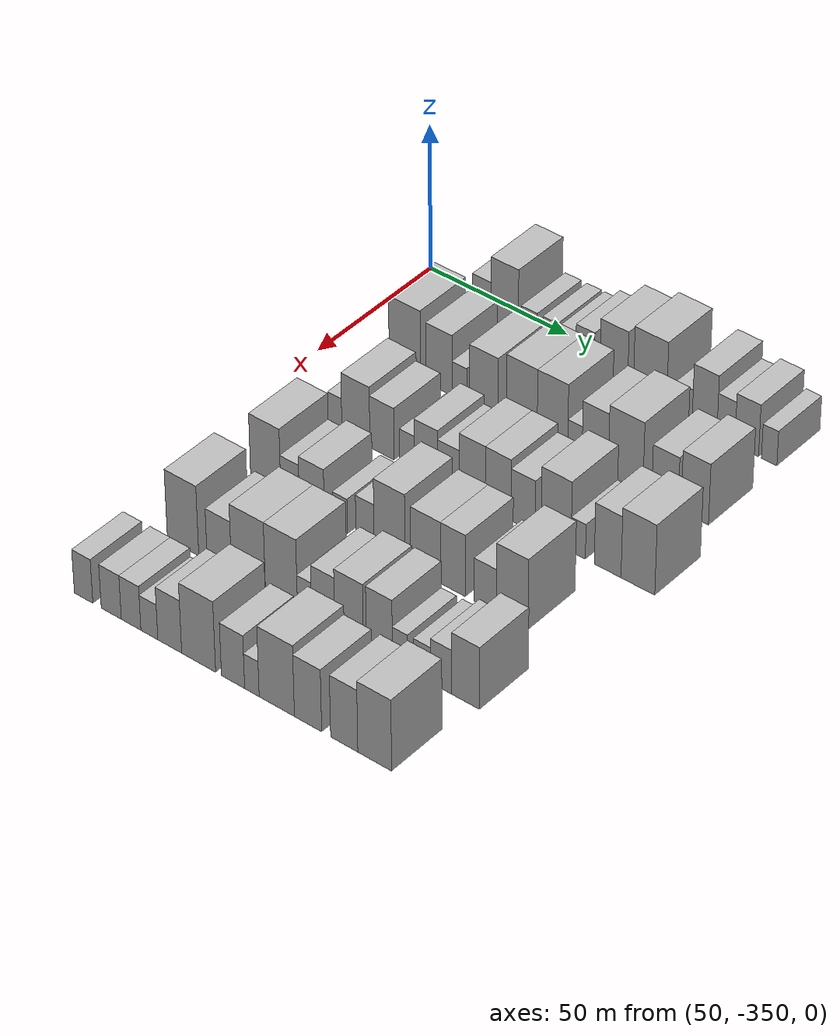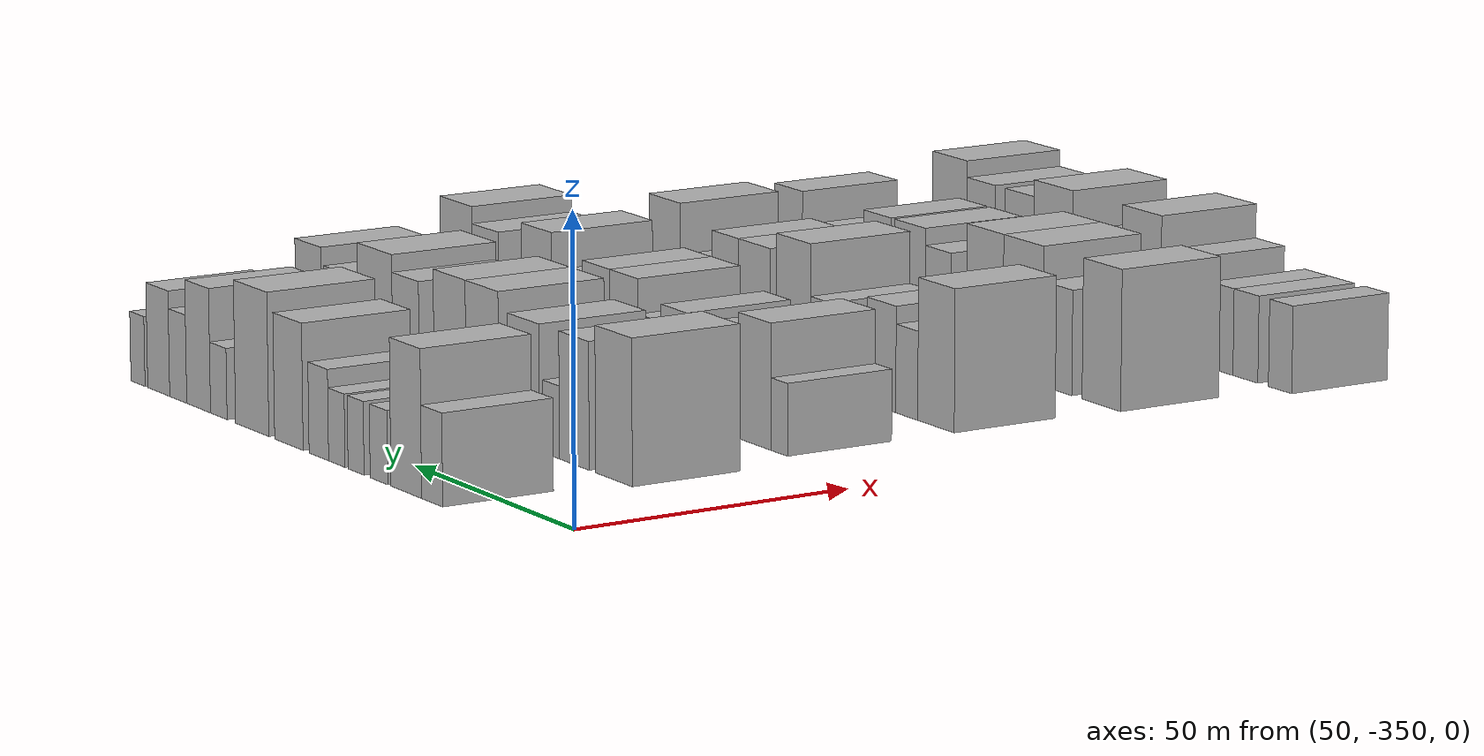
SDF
<sdf version="1.6">
 <world name="default">
  <model name="building_25">
   <static>1</static>
   <pose>50.0000 -323.1239 0 0.000000 0.000000 0.000000</pose>
   <link name="link">
    <pose>0 0 7.50 0 0 0</pose>
    <collision name="collision"><geometry><box><size>20.0000 6.7168 15.0000</size></box></geometry></collision>
    <visual name="visual">
     <cast_shadows>0</cast_shadows>
     <geometry><box><size>20.0000 6.7168 15.0000</size></box></geometry>
     <material>
      <script>
       <uri>model://HANNAS_wall/materials/scripts</uri>
       <uri>model://HANNAS_wall/materials/textures</uri>
       <name>vrc/HANNAS_wall</name>
      </script>
     </material>
    </visual>
   </link>
  </model>
  <model name="building_26">
   <static>1</static>
   <pose>50.0000 -314.8411 0 0.000000 0.000000 0.000000</pose>
   <link name="link">
    <pose>0 0 12.00 0 0 0</pose>
    <collision name="collision"><geometry><box><size>20.0000 9.8489 24.0000</size></box></geometry></collision>
    <visual name="visual">
     <cast_shadows>0</cast_shadows>
     <geometry><box><size>20.0000 9.8489 24.0000</size></box></geometry>
     <material>
      <script>
       <uri>model://HANNAS_wall/materials/scripts</uri>
       <uri>model://HANNAS_wall/materials/textures</uri>
       <name>vrc/HANNAS_wall</name>
      </script>
     </material>
    </visual>
   </link>
  </model>
  <model name="building_27">
   <static>1</static>
   <pose>50.0000 -306.0254 0 0.000000 0.000000 0.000000</pose>
   <link name="link">
    <pose>0 0 6.00 0 0 0</pose>
    <collision name="collision"><geometry><box><size>20.0000 5.7825 12.0000</size></box></geometry></collision>
    <visual name="visual">
     <cast_shadows>0</cast_shadows>
     <geometry><box><size>20.0000 5.7825 12.0000</size></box></geometry>
     <material>
      <script>
       <uri>model://HANNAS_wall/materials/scripts</uri>
       <uri>model://HANNAS_wall/materials/textures</uri>
       <name>vrc/HANNAS_wall</name>
      </script>
     </material>
    </visual>
   </link>
  </model>
  <model name="building_28">
   <static>1</static>
   <pose>50.0000 -298.4879 0 0.000000 0.000000 0.000000</pose>
   <link name="link">
    <pose>0 0 6.00 0 0 0</pose>
    <collision name="collision"><geometry><box><size>20.0000 5.2925 12.0000</size></box></geometry></collision>
    <visual name="visual">
     <cast_shadows>0</cast_shadows>
     <geometry><box><size>20.0000 5.2925 12.0000</size></box></geometry>
     <material>
      <script>
       <uri>model://HANNAS_wall/materials/scripts</uri>
       <uri>model://HANNAS_wall/materials/textures</uri>
       <name>vrc/HANNAS_wall</name>
      </script>
     </material>
    </visual>
   </link>
  </model>
  <model name="building_29">
   <static>1</static>
   <pose>50.0000 -292.1043 0 0.000000 0.000000 0.000000</pose>
   <link name="link">
    <pose>0 0 6.00 0 0 0</pose>
    <collision name="collision"><geometry><box><size>20.0000 5.4748 12.0000</size></box></geometry></collision>
    <visual name="visual">
     <cast_shadows>0</cast_shadows>
     <geometry><box><size>20.0000 5.4748 12.0000</size></box></geometry>
     <material>
      <script>
       <uri>model://HANNAS_wall/materials/scripts</uri>
       <uri>model://HANNAS_wall/materials/textures</uri>
       <name>vrc/HANNAS_wall</name>
      </script>
     </material>
    </visual>
   </link>
  </model>
  <model name="building_30">
   <static>1</static>
   <pose>50.0000 -286.0826 0 0.000000 0.000000 0.000000</pose>
   <link name="link">
    <pose>0 0 7.50 0 0 0</pose>
    <collision name="collision"><geometry><box><size>20.0000 6.5685 15.0000</size></box></geometry></collision>
    <visual name="visual">
     <cast_shadows>0</cast_shadows>
     <geometry><box><size>20.0000 6.5685 15.0000</size></box></geometry>
     <material>
      <script>
       <uri>model://HANNAS_wall/materials/scripts</uri>
       <uri>model://HANNAS_wall/materials/textures</uri>
       <name>vrc/HANNAS_wall</name>
      </script>
     </material>
    </visual>
   </link>
  </model>
  <model name="building_31">
   <static>1</static>
   <pose>50.0000 -275.9308 0 0.000000 0.000000 0.000000</pose>
   <link name="link">
    <pose>0 0 10.50 0 0 0</pose>
    <collision name="collision"><geometry><box><size>20.0000 9.7352 21.0000</size></box></geometry></collision>
    <visual name="visual">
     <cast_shadows>0</cast_shadows>
     <geometry><box><size>20.0000 9.7352 21.0000</size></box></geometry>
     <material>
      <script>
       <uri>model://HANNAS_wall/materials/scripts</uri>
       <uri>model://HANNAS_wall/materials/textures</uri>
       <name>vrc/HANNAS_wall</name>
      </script>
     </material>
    </visual>
   </link>
  </model>
  <model name="building_32">
   <static>1</static>
   <pose>50.0000 -263.2702 0 0.000000 0.000000 0.000000</pose>
   <link name="link">
    <pose>0 0 12.00 0 0 0</pose>
    <collision name="collision"><geometry><box><size>20.0000 11.5859 24.0000</size></box></geometry></collision>
    <visual name="visual">
     <cast_shadows>0</cast_shadows>
     <geometry><box><size>20.0000 11.5859 24.0000</size></box></geometry>
     <material>
      <script>
       <uri>model://HANNAS_wall/materials/scripts</uri>
       <uri>model://HANNAS_wall/materials/textures</uri>
       <name>vrc/HANNAS_wall</name>
      </script>
     </material>
    </visual>
   </link>
  </model>
  <model name="building_33">
   <static>1</static>
   <pose>50.0000 -251.5453 0 0.000000 0.000000 0.000000</pose>
   <link name="link">
    <pose>0 0 6.00 0 0 0</pose>
    <collision name="collision"><geometry><box><size>20.0000 5.8639 12.0000</size></box></geometry></collision>
    <visual name="visual">
     <cast_shadows>0</cast_shadows>
     <geometry><box><size>20.0000 5.8639 12.0000</size></box></geometry>
     <material>
      <script>
       <uri>model://HANNAS_wall/materials/scripts</uri>
       <uri>model://HANNAS_wall/materials/textures</uri>
       <name>vrc/HANNAS_wall</name>
      </script>
     </material>
    </visual>
   </link>
  </model>
  <model name="building_34">
   <static>1</static>
   <pose>50.0000 -244.3502 0 0.000000 0.000000 0.000000</pose>
   <link name="link">
    <pose>0 0 10.50 0 0 0</pose>
    <collision name="collision"><geometry><box><size>20.0000 8.5263 21.0000</size></box></geometry></collision>
    <visual name="visual">
     <cast_shadows>0</cast_shadows>
     <geometry><box><size>20.0000 8.5263 21.0000</size></box></geometry>
     <material>
      <script>
       <uri>model://HANNAS_wall/materials/scripts</uri>
       <uri>model://HANNAS_wall/materials/textures</uri>
       <name>vrc/HANNAS_wall</name>
      </script>
     </material>
    </visual>
   </link>
  </model>
  <model name="building_35">
   <static>1</static>
   <pose>50.0000 -237.0086 0 0.000000 0.000000 0.000000</pose>
   <link name="link">
    <pose>0 0 7.50 0 0 0</pose>
    <collision name="collision"><geometry><box><size>20.0000 6.1569 15.0000</size></box></geometry></collision>
    <visual name="visual">
     <cast_shadows>0</cast_shadows>
     <geometry><box><size>20.0000 6.1569 15.0000</size></box></geometry>
     <material>
      <script>
       <uri>model://HANNAS_wall/materials/scripts</uri>
       <uri>model://HANNAS_wall/materials/textures</uri>
       <name>vrc/HANNAS_wall</name>
      </script>
     </material>
    </visual>
   </link>
  </model>
  <model name="building_36">
   <static>1</static>
   <pose>50.0000 -229.9127 0 0.000000 0.000000 0.000000</pose>
   <link name="link">
    <pose>0 0 9.00 0 0 0</pose>
    <collision name="collision"><geometry><box><size>20.0000 8.0350 18.0000</size></box></geometry></collision>
    <visual name="visual">
     <cast_shadows>0</cast_shadows>
     <geometry><box><size>20.0000 8.0350 18.0000</size></box></geometry>
     <material>
      <script>
       <uri>model://HANNAS_wall/materials/scripts</uri>
       <uri>model://HANNAS_wall/materials/textures</uri>
       <name>vrc/HANNAS_wall</name>
      </script>
     </material>
    </visual>
   </link>
  </model>
  <model name="building_37">
   <static>1</static>
   <pose>50.0000 -222.2932 0 0.000000 0.000000 0.000000</pose>
   <link name="link">
    <pose>0 0 6.00 0 0 0</pose>
    <collision name="collision"><geometry><box><size>20.0000 5.2040 12.0000</size></box></geometry></collision>
    <visual name="visual">
     <cast_shadows>0</cast_shadows>
     <geometry><box><size>20.0000 5.2040 12.0000</size></box></geometry>
     <material>
      <script>
       <uri>model://HANNAS_wall/materials/scripts</uri>
       <uri>model://HANNAS_wall/materials/textures</uri>
       <name>vrc/HANNAS_wall</name>
      </script>
     </material>
    </visual>
   </link>
  </model>
  <model name="building_145">
   <static>1</static>
   <pose>82.0000 -324.9155 0 0.000000 0.000000 0.000000</pose>
   <link name="link">
    <pose>0 0 12.00 0 0 0</pose>
    <collision name="collision"><geometry><box><size>20.0000 11.3143 24.0000</size></box></geometry></collision>
    <visual name="visual">
     <cast_shadows>0</cast_shadows>
     <geometry><box><size>20.0000 11.3143 24.0000</size></box></geometry>
     <material>
      <script>
       <uri>model://HANNAS_wall/materials/scripts</uri>
       <uri>model://HANNAS_wall/materials/textures</uri>
       <name>vrc/HANNAS_wall</name>
      </script>
     </material>
    </visual>
   </link>
  </model>
  <model name="building_146">
   <static>1</static>
   <pose>82.0000 -312.5864 0 0.000000 0.000000 0.000000</pose>
   <link name="link">
    <pose>0 0 10.50 0 0 0</pose>
    <collision name="collision"><geometry><box><size>20.0000 9.3438 21.0000</size></box></geometry></collision>
    <visual name="visual">
     <cast_shadows>0</cast_shadows>
     <geometry><box><size>20.0000 9.3438 21.0000</size></box></geometry>
     <material>
      <script>
       <uri>model://HANNAS_wall/materials/scripts</uri>
       <uri>model://HANNAS_wall/materials/textures</uri>
       <name>vrc/HANNAS_wall</name>
      </script>
     </material>
    </visual>
   </link>
  </model>
  <model name="building_147">
   <static>1</static>
   <pose>82.0000 -305.2700 0 0.000000 0.000000 0.000000</pose>
   <link name="link">
    <pose>0 0 6.00 0 0 0</pose>
    <collision name="collision"><geometry><box><size>20.0000 5.2890 12.0000</size></box></geometry></collision>
    <visual name="visual">
     <cast_shadows>0</cast_shadows>
     <geometry><box><size>20.0000 5.2890 12.0000</size></box></geometry>
     <material>
      <script>
       <uri>model://HANNAS_wall/materials/scripts</uri>
       <uri>model://HANNAS_wall/materials/textures</uri>
       <name>vrc/HANNAS_wall</name>
      </script>
     </material>
    </visual>
   </link>
  </model>
  <model name="building_148">
   <static>1</static>
   <pose>82.0000 -296.5639 0 0.000000 0.000000 0.000000</pose>
   <link name="link">
    <pose>0 0 10.50 0 0 0</pose>
    <collision name="collision"><geometry><box><size>20.0000 10.1232 21.0000</size></box></geometry></collision>
    <visual name="visual">
     <cast_shadows>0</cast_shadows>
     <geometry><box><size>20.0000 10.1232 21.0000</size></box></geometry>
     <material>
      <script>
       <uri>model://HANNAS_wall/materials/scripts</uri>
       <uri>model://HANNAS_wall/materials/textures</uri>
       <name>vrc/HANNAS_wall</name>
      </script>
     </material>
    </visual>
   </link>
  </model>
  <model name="building_149">
   <static>1</static>
   <pose>82.0000 -283.1293 0 0.000000 0.000000 0.000000</pose>
   <link name="link">
    <pose>0 0 12.00 0 0 0</pose>
    <collision name="collision"><geometry><box><size>20.0000 10.7460 24.0000</size></box></geometry></collision>
    <visual name="visual">
     <cast_shadows>0</cast_shadows>
     <geometry><box><size>20.0000 10.7460 24.0000</size></box></geometry>
     <material>
      <script>
       <uri>model://HANNAS_wall/materials/scripts</uri>
       <uri>model://HANNAS_wall/materials/textures</uri>
       <name>vrc/HANNAS_wall</name>
      </script>
     </material>
    </visual>
   </link>
  </model>
  <model name="building_150">
   <static>1</static>
   <pose>82.0000 -272.4402 0 0.000000 0.000000 0.000000</pose>
   <link name="link">
    <pose>0 0 12.00 0 0 0</pose>
    <collision name="collision"><geometry><box><size>20.0000 10.6322 24.0000</size></box></geometry></collision>
    <visual name="visual">
     <cast_shadows>0</cast_shadows>
     <geometry><box><size>20.0000 10.6322 24.0000</size></box></geometry>
     <material>
      <script>
       <uri>model://HANNAS_wall/materials/scripts</uri>
       <uri>model://HANNAS_wall/materials/textures</uri>
       <name>vrc/HANNAS_wall</name>
      </script>
     </material>
    </visual>
   </link>
  </model>
  <model name="building_151">
   <static>1</static>
   <pose>82.0000 -264.6175 0 0.000000 0.000000 0.000000</pose>
   <link name="link">
    <pose>0 0 6.00 0 0 0</pose>
    <collision name="collision"><geometry><box><size>20.0000 5.0132 12.0000</size></box></geometry></collision>
    <visual name="visual">
     <cast_shadows>0</cast_shadows>
     <geometry><box><size>20.0000 5.0132 12.0000</size></box></geometry>
     <material>
      <script>
       <uri>model://HANNAS_wall/materials/scripts</uri>
       <uri>model://HANNAS_wall/materials/textures</uri>
       <name>vrc/HANNAS_wall</name>
      </script>
     </material>
    </visual>
   </link>
  </model>
  <model name="building_152">
   <static>1</static>
   <pose>82.0000 -257.5850 0 0.000000 0.000000 0.000000</pose>
   <link name="link">
    <pose>0 0 10.50 0 0 0</pose>
    <collision name="collision"><geometry><box><size>20.0000 9.0517 21.0000</size></box></geometry></collision>
    <visual name="visual">
     <cast_shadows>0</cast_shadows>
     <geometry><box><size>20.0000 9.0517 21.0000</size></box></geometry>
     <material>
      <script>
       <uri>model://HANNAS_wall/materials/scripts</uri>
       <uri>model://HANNAS_wall/materials/textures</uri>
       <name>vrc/HANNAS_wall</name>
      </script>
     </material>
    </visual>
   </link>
  </model>
  <model name="building_153">
   <static>1</static>
   <pose>82.0000 -247.1216 0 0.000000 0.000000 0.000000</pose>
   <link name="link">
    <pose>0 0 12.00 0 0 0</pose>
    <collision name="collision"><geometry><box><size>20.0000 11.8750 24.0000</size></box></geometry></collision>
    <visual name="visual">
     <cast_shadows>0</cast_shadows>
     <geometry><box><size>20.0000 11.8750 24.0000</size></box></geometry>
     <material>
      <script>
       <uri>model://HANNAS_wall/materials/scripts</uri>
       <uri>model://HANNAS_wall/materials/textures</uri>
       <name>vrc/HANNAS_wall</name>
      </script>
     </material>
    </visual>
   </link>
  </model>
  <model name="building_154">
   <static>1</static>
   <pose>82.0000 -233.7291 0 0.000000 0.000000 0.000000</pose>
   <link name="link">
    <pose>0 0 9.00 0 0 0</pose>
    <collision name="collision"><geometry><box><size>20.0000 8.9100 18.0000</size></box></geometry></collision>
    <visual name="visual">
     <cast_shadows>0</cast_shadows>
     <geometry><box><size>20.0000 8.9100 18.0000</size></box></geometry>
     <material>
      <script>
       <uri>model://HANNAS_wall/materials/scripts</uri>
       <uri>model://HANNAS_wall/materials/textures</uri>
       <name>vrc/HANNAS_wall</name>
      </script>
     </material>
    </visual>
   </link>
  </model>
  <model name="building_155">
   <static>1</static>
   <pose>82.0000 -223.6609 0 0.000000 0.000000 0.000000</pose>
   <link name="link">
    <pose>0 0 10.50 0 0 0</pose>
    <collision name="collision"><geometry><box><size>20.0000 9.2265 21.0000</size></box></geometry></collision>
    <visual name="visual">
     <cast_shadows>0</cast_shadows>
     <geometry><box><size>20.0000 9.2265 21.0000</size></box></geometry>
     <material>
      <script>
       <uri>model://HANNAS_wall/materials/scripts</uri>
       <uri>model://HANNAS_wall/materials/textures</uri>
       <name>vrc/HANNAS_wall</name>
      </script>
     </material>
    </visual>
   </link>
  </model>
  <model name="building_267">
   <static>1</static>
   <pose>114.0000 -323.3046 0 0.000000 0.000000 0.000000</pose>
   <link name="link">
    <pose>0 0 6.00 0 0 0</pose>
    <collision name="collision"><geometry><box><size>20.0000 4.9419 12.0000</size></box></geometry></collision>
    <visual name="visual">
     <cast_shadows>0</cast_shadows>
     <geometry><box><size>20.0000 4.9419 12.0000</size></box></geometry>
     <material>
      <script>
       <uri>model://HANNAS_wall/materials/scripts</uri>
       <uri>model://HANNAS_wall/materials/textures</uri>
       <name>vrc/HANNAS_wall</name>
      </script>
     </material>
    </visual>
   </link>
  </model>
  <model name="building_268">
   <static>1</static>
   <pose>114.0000 -315.8042 0 0.000000 0.000000 0.000000</pose>
   <link name="link">
    <pose>0 0 10.50 0 0 0</pose>
    <collision name="collision"><geometry><box><size>20.0000 10.0590 21.0000</size></box></geometry></collision>
    <visual name="visual">
     <cast_shadows>0</cast_shadows>
     <geometry><box><size>20.0000 10.0590 21.0000</size></box></geometry>
     <material>
      <script>
       <uri>model://HANNAS_wall/materials/scripts</uri>
       <uri>model://HANNAS_wall/materials/textures</uri>
       <name>vrc/HANNAS_wall</name>
      </script>
     </material>
    </visual>
   </link>
  </model>
  <model name="building_269">
   <static>1</static>
   <pose>114.0000 -306.4546 0 0.000000 0.000000 0.000000</pose>
   <link name="link">
    <pose>0 0 9.00 0 0 0</pose>
    <collision name="collision"><geometry><box><size>20.0000 8.6401 18.0000</size></box></geometry></collision>
    <visual name="visual">
     <cast_shadows>0</cast_shadows>
     <geometry><box><size>20.0000 8.6401 18.0000</size></box></geometry>
     <material>
      <script>
       <uri>model://HANNAS_wall/materials/scripts</uri>
       <uri>model://HANNAS_wall/materials/textures</uri>
       <name>vrc/HANNAS_wall</name>
      </script>
     </material>
    </visual>
   </link>
  </model>
  <model name="building_270">
   <static>1</static>
   <pose>114.0000 -297.5859 0 0.000000 0.000000 0.000000</pose>
   <link name="link">
    <pose>0 0 6.00 0 0 0</pose>
    <collision name="collision"><geometry><box><size>20.0000 5.0974 12.0000</size></box></geometry></collision>
    <visual name="visual">
     <cast_shadows>0</cast_shadows>
     <geometry><box><size>20.0000 5.0974 12.0000</size></box></geometry>
     <material>
      <script>
       <uri>model://HANNAS_wall/materials/scripts</uri>
       <uri>model://HANNAS_wall/materials/textures</uri>
       <name>vrc/HANNAS_wall</name>
      </script>
     </material>
    </visual>
   </link>
  </model>
  <model name="building_271">
   <static>1</static>
   <pose>114.0000 -290.8925 0 0.000000 0.000000 0.000000</pose>
   <link name="link">
    <pose>0 0 9.00 0 0 0</pose>
    <collision name="collision"><geometry><box><size>20.0000 8.2893 18.0000</size></box></geometry></collision>
    <visual name="visual">
     <cast_shadows>0</cast_shadows>
     <geometry><box><size>20.0000 8.2893 18.0000</size></box></geometry>
     <material>
      <script>
       <uri>model://HANNAS_wall/materials/scripts</uri>
       <uri>model://HANNAS_wall/materials/textures</uri>
       <name>vrc/HANNAS_wall</name>
      </script>
     </material>
    </visual>
   </link>
  </model>
  <model name="building_272">
   <static>1</static>
   <pose>114.0000 -283.0119 0 0.000000 0.000000 0.000000</pose>
   <link name="link">
    <pose>0 0 7.50 0 0 0</pose>
    <collision name="collision"><geometry><box><size>20.0000 7.4720 15.0000</size></box></geometry></collision>
    <visual name="visual">
     <cast_shadows>0</cast_shadows>
     <geometry><box><size>20.0000 7.4720 15.0000</size></box></geometry>
     <material>
      <script>
       <uri>model://HANNAS_wall/materials/scripts</uri>
       <uri>model://HANNAS_wall/materials/textures</uri>
       <name>vrc/HANNAS_wall</name>
      </script>
     </material>
    </visual>
   </link>
  </model>
  <model name="building_273">
   <static>1</static>
   <pose>114.0000 -274.7389 0 0.000000 0.000000 0.000000</pose>
   <link name="link">
    <pose>0 0 10.50 0 0 0</pose>
    <collision name="collision"><geometry><box><size>20.0000 9.0740 21.0000</size></box></geometry></collision>
    <visual name="visual">
     <cast_shadows>0</cast_shadows>
     <geometry><box><size>20.0000 9.0740 21.0000</size></box></geometry>
     <material>
      <script>
       <uri>model://HANNAS_wall/materials/scripts</uri>
       <uri>model://HANNAS_wall/materials/textures</uri>
       <name>vrc/HANNAS_wall</name>
      </script>
     </material>
    </visual>
   </link>
  </model>
  <model name="building_274">
   <static>1</static>
   <pose>114.0000 -265.7558 0 0.000000 0.000000 0.000000</pose>
   <link name="link">
    <pose>0 0 10.50 0 0 0</pose>
    <collision name="collision"><geometry><box><size>20.0000 8.8921 21.0000</size></box></geometry></collision>
    <visual name="visual">
     <cast_shadows>0</cast_shadows>
     <geometry><box><size>20.0000 8.8921 21.0000</size></box></geometry>
     <material>
      <script>
       <uri>model://HANNAS_wall/materials/scripts</uri>
       <uri>model://HANNAS_wall/materials/textures</uri>
       <name>vrc/HANNAS_wall</name>
      </script>
     </material>
    </visual>
   </link>
  </model>
  <model name="building_275">
   <static>1</static>
   <pose>114.0000 -257.1685 0 0.000000 0.000000 0.000000</pose>
   <link name="link">
    <pose>0 0 9.00 0 0 0</pose>
    <collision name="collision"><geometry><box><size>20.0000 8.2824 18.0000</size></box></geometry></collision>
    <visual name="visual">
     <cast_shadows>0</cast_shadows>
     <geometry><box><size>20.0000 8.2824 18.0000</size></box></geometry>
     <material>
      <script>
       <uri>model://HANNAS_wall/materials/scripts</uri>
       <uri>model://HANNAS_wall/materials/textures</uri>
       <name>vrc/HANNAS_wall</name>
      </script>
     </material>
    </visual>
   </link>
  </model>
  <model name="building_276">
   <static>1</static>
   <pose>114.0000 -245.9359 0 0.000000 0.000000 0.000000</pose>
   <link name="link">
    <pose>0 0 12.00 0 0 0</pose>
    <collision name="collision"><geometry><box><size>20.0000 10.1828 24.0000</size></box></geometry></collision>
    <visual name="visual">
     <cast_shadows>0</cast_shadows>
     <geometry><box><size>20.0000 10.1828 24.0000</size></box></geometry>
     <material>
      <script>
       <uri>model://HANNAS_wall/materials/scripts</uri>
       <uri>model://HANNAS_wall/materials/textures</uri>
       <name>vrc/HANNAS_wall</name>
      </script>
     </material>
    </visual>
   </link>
  </model>
  <model name="building_277">
   <static>1</static>
   <pose>114.0000 -238.4029 0 0.000000 0.000000 0.000000</pose>
   <link name="link">
    <pose>0 0 6.00 0 0 0</pose>
    <collision name="collision"><geometry><box><size>20.0000 4.8831 12.0000</size></box></geometry></collision>
    <visual name="visual">
     <cast_shadows>0</cast_shadows>
     <geometry><box><size>20.0000 4.8831 12.0000</size></box></geometry>
     <material>
      <script>
       <uri>model://HANNAS_wall/materials/scripts</uri>
       <uri>model://HANNAS_wall/materials/textures</uri>
       <name>vrc/HANNAS_wall</name>
      </script>
     </material>
    </visual>
   </link>
  </model>
  <model name="building_278">
   <static>1</static>
   <pose>114.0000 -228.4834 0 0.000000 0.000000 0.000000</pose>
   <link name="link">
    <pose>0 0 10.50 0 0 0</pose>
    <collision name="collision"><geometry><box><size>20.0000 8.9560 21.0000</size></box></geometry></collision>
    <visual name="visual">
     <cast_shadows>0</cast_shadows>
     <geometry><box><size>20.0000 8.9560 21.0000</size></box></geometry>
     <material>
      <script>
       <uri>model://HANNAS_wall/materials/scripts</uri>
       <uri>model://HANNAS_wall/materials/textures</uri>
       <name>vrc/HANNAS_wall</name>
      </script>
     </material>
    </visual>
   </link>
  </model>
  <model name="building_279">
   <static>1</static>
   <pose>114.0000 -218.3840 0 0.000000 0.000000 0.000000</pose>
   <link name="link">
    <pose>0 0 12.00 0 0 0</pose>
    <collision name="collision"><geometry><box><size>20.0000 11.2427 24.0000</size></box></geometry></collision>
    <visual name="visual">
     <cast_shadows>0</cast_shadows>
     <geometry><box><size>20.0000 11.2427 24.0000</size></box></geometry>
     <material>
      <script>
       <uri>model://HANNAS_wall/materials/scripts</uri>
       <uri>model://HANNAS_wall/materials/textures</uri>
       <name>vrc/HANNAS_wall</name>
      </script>
     </material>
    </visual>
   </link>
  </model>
  <model name="building_389">
   <static>1</static>
   <pose>146.0000 -320.6874 0 0.000000 0.000000 0.000000</pose>
   <link name="link">
    <pose>0 0 12.00 0 0 0</pose>
    <collision name="collision"><geometry><box><size>20.0000 10.7909 24.0000</size></box></geometry></collision>
    <visual name="visual">
     <cast_shadows>0</cast_shadows>
     <geometry><box><size>20.0000 10.7909 24.0000</size></box></geometry>
     <material>
      <script>
       <uri>model://HANNAS_wall/materials/scripts</uri>
       <uri>model://HANNAS_wall/materials/textures</uri>
       <name>vrc/HANNAS_wall</name>
      </script>
     </material>
    </visual>
   </link>
  </model>
  <model name="building_390">
   <static>1</static>
   <pose>146.0000 -311.9916 0 0.000000 0.000000 0.000000</pose>
   <link name="link">
    <pose>0 0 7.50 0 0 0</pose>
    <collision name="collision"><geometry><box><size>20.0000 6.6008 15.0000</size></box></geometry></collision>
    <visual name="visual">
     <cast_shadows>0</cast_shadows>
     <geometry><box><size>20.0000 6.6008 15.0000</size></box></geometry>
     <material>
      <script>
       <uri>model://HANNAS_wall/materials/scripts</uri>
       <uri>model://HANNAS_wall/materials/textures</uri>
       <name>vrc/HANNAS_wall</name>
      </script>
     </material>
    </visual>
   </link>
  </model>
  <model name="building_391">
   <static>1</static>
   <pose>146.0000 -304.2658 0 0.000000 0.000000 0.000000</pose>
   <link name="link">
    <pose>0 0 9.00 0 0 0</pose>
    <collision name="collision"><geometry><box><size>20.0000 8.8506 18.0000</size></box></geometry></collision>
    <visual name="visual">
     <cast_shadows>0</cast_shadows>
     <geometry><box><size>20.0000 8.8506 18.0000</size></box></geometry>
     <material>
      <script>
       <uri>model://HANNAS_wall/materials/scripts</uri>
       <uri>model://HANNAS_wall/materials/textures</uri>
       <name>vrc/HANNAS_wall</name>
      </script>
     </material>
    </visual>
   </link>
  </model>
  <model name="building_392">
   <static>1</static>
   <pose>146.0000 -294.2972 0 0.000000 0.000000 0.000000</pose>
   <link name="link">
    <pose>0 0 6.00 0 0 0</pose>
    <collision name="collision"><geometry><box><size>20.0000 5.0867 12.0000</size></box></geometry></collision>
    <visual name="visual">
     <cast_shadows>0</cast_shadows>
     <geometry><box><size>20.0000 5.0867 12.0000</size></box></geometry>
     <material>
      <script>
       <uri>model://HANNAS_wall/materials/scripts</uri>
       <uri>model://HANNAS_wall/materials/textures</uri>
       <name>vrc/HANNAS_wall</name>
      </script>
     </material>
    </visual>
   </link>
  </model>
  <model name="building_393">
   <static>1</static>
   <pose>146.0000 -285.5951 0 0.000000 0.000000 0.000000</pose>
   <link name="link">
    <pose>0 0 7.50 0 0 0</pose>
    <collision name="collision"><geometry><box><size>20.0000 6.3174 15.0000</size></box></geometry></collision>
    <visual name="visual">
     <cast_shadows>0</cast_shadows>
     <geometry><box><size>20.0000 6.3174 15.0000</size></box></geometry>
     <material>
      <script>
       <uri>model://HANNAS_wall/materials/scripts</uri>
       <uri>model://HANNAS_wall/materials/textures</uri>
       <name>vrc/HANNAS_wall</name>
      </script>
     </material>
    </visual>
   </link>
  </model>
  <model name="building_394">
   <static>1</static>
   <pose>146.0000 -277.0884 0 0.000000 0.000000 0.000000</pose>
   <link name="link">
    <pose>0 0 12.00 0 0 0</pose>
    <collision name="collision"><geometry><box><size>20.0000 10.6960 24.0000</size></box></geometry></collision>
    <visual name="visual">
     <cast_shadows>0</cast_shadows>
     <geometry><box><size>20.0000 10.6960 24.0000</size></box></geometry>
     <material>
      <script>
       <uri>model://HANNAS_wall/materials/scripts</uri>
       <uri>model://HANNAS_wall/materials/textures</uri>
       <name>vrc/HANNAS_wall</name>
      </script>
     </material>
    </visual>
   </link>
  </model>
  <model name="building_395">
   <static>1</static>
   <pose>146.0000 -264.6644 0 0.000000 0.000000 0.000000</pose>
   <link name="link">
    <pose>0 0 10.50 0 0 0</pose>
    <collision name="collision"><geometry><box><size>20.0000 10.1520 21.0000</size></box></geometry></collision>
    <visual name="visual">
     <cast_shadows>0</cast_shadows>
     <geometry><box><size>20.0000 10.1520 21.0000</size></box></geometry>
     <material>
      <script>
       <uri>model://HANNAS_wall/materials/scripts</uri>
       <uri>model://HANNAS_wall/materials/textures</uri>
       <name>vrc/HANNAS_wall</name>
      </script>
     </material>
    </visual>
   </link>
  </model>
  <model name="building_396">
   <static>1</static>
   <pose>146.0000 -255.3286 0 0.000000 0.000000 0.000000</pose>
   <link name="link">
    <pose>0 0 10.50 0 0 0</pose>
    <collision name="collision"><geometry><box><size>20.0000 8.5195 21.0000</size></box></geometry></collision>
    <visual name="visual">
     <cast_shadows>0</cast_shadows>
     <geometry><box><size>20.0000 8.5195 21.0000</size></box></geometry>
     <material>
      <script>
       <uri>model://HANNAS_wall/materials/scripts</uri>
       <uri>model://HANNAS_wall/materials/textures</uri>
       <name>vrc/HANNAS_wall</name>
      </script>
     </material>
    </visual>
   </link>
  </model>
  <model name="building_397">
   <static>1</static>
   <pose>146.0000 -244.3305 0 0.000000 0.000000 0.000000</pose>
   <link name="link">
    <pose>0 0 7.50 0 0 0</pose>
    <collision name="collision"><geometry><box><size>20.0000 7.4768 15.0000</size></box></geometry></collision>
    <visual name="visual">
     <cast_shadows>0</cast_shadows>
     <geometry><box><size>20.0000 7.4768 15.0000</size></box></geometry>
     <material>
      <script>
       <uri>model://HANNAS_wall/materials/scripts</uri>
       <uri>model://HANNAS_wall/materials/textures</uri>
       <name>vrc/HANNAS_wall</name>
      </script>
     </material>
    </visual>
   </link>
  </model>
  <model name="building_398">
   <static>1</static>
   <pose>146.0000 -235.3258 0 0.000000 0.000000 0.000000</pose>
   <link name="link">
    <pose>0 0 12.00 0 0 0</pose>
    <collision name="collision"><geometry><box><size>20.0000 10.5327 24.0000</size></box></geometry></collision>
    <visual name="visual">
     <cast_shadows>0</cast_shadows>
     <geometry><box><size>20.0000 10.5327 24.0000</size></box></geometry>
     <material>
      <script>
       <uri>model://HANNAS_wall/materials/scripts</uri>
       <uri>model://HANNAS_wall/materials/textures</uri>
       <name>vrc/HANNAS_wall</name>
      </script>
     </material>
    </visual>
   </link>
  </model>
  <model name="building_504">
   <static>1</static>
   <pose>178.0000 -322.1280 0 0.000000 0.000000 0.000000</pose>
   <link name="link">
    <pose>0 0 12.00 0 0 0</pose>
    <collision name="collision"><geometry><box><size>20.0000 11.1802 24.0000</size></box></geometry></collision>
    <visual name="visual">
     <cast_shadows>0</cast_shadows>
     <geometry><box><size>20.0000 11.1802 24.0000</size></box></geometry>
     <material>
      <script>
       <uri>model://HANNAS_wall/materials/scripts</uri>
       <uri>model://HANNAS_wall/materials/textures</uri>
       <name>vrc/HANNAS_wall</name>
      </script>
     </material>
    </visual>
   </link>
  </model>
  <model name="building_505">
   <static>1</static>
   <pose>178.0000 -309.2130 0 0.000000 0.000000 0.000000</pose>
   <link name="link">
    <pose>0 0 9.00 0 0 0</pose>
    <collision name="collision"><geometry><box><size>20.0000 8.6498 18.0000</size></box></geometry></collision>
    <visual name="visual">
     <cast_shadows>0</cast_shadows>
     <geometry><box><size>20.0000 8.6498 18.0000</size></box></geometry>
     <material>
      <script>
       <uri>model://HANNAS_wall/materials/scripts</uri>
       <uri>model://HANNAS_wall/materials/textures</uri>
       <name>vrc/HANNAS_wall</name>
      </script>
     </material>
    </visual>
   </link>
  </model>
  <model name="building_506">
   <static>1</static>
   <pose>178.0000 -298.9428 0 0.000000 0.000000 0.000000</pose>
   <link name="link">
    <pose>0 0 12.00 0 0 0</pose>
    <collision name="collision"><geometry><box><size>20.0000 11.8905 24.0000</size></box></geometry></collision>
    <visual name="visual">
     <cast_shadows>0</cast_shadows>
     <geometry><box><size>20.0000 11.8905 24.0000</size></box></geometry>
     <material>
      <script>
       <uri>model://HANNAS_wall/materials/scripts</uri>
       <uri>model://HANNAS_wall/materials/textures</uri>
       <name>vrc/HANNAS_wall</name>
      </script>
     </material>
    </visual>
   </link>
  </model>
  <model name="building_507">
   <static>1</static>
   <pose>178.0000 -287.4220 0 0.000000 0.000000 0.000000</pose>
   <link name="link">
    <pose>0 0 12.00 0 0 0</pose>
    <collision name="collision"><geometry><box><size>20.0000 11.1511 24.0000</size></box></geometry></collision>
    <visual name="visual">
     <cast_shadows>0</cast_shadows>
     <geometry><box><size>20.0000 11.1511 24.0000</size></box></geometry>
     <material>
      <script>
       <uri>model://HANNAS_wall/materials/scripts</uri>
       <uri>model://HANNAS_wall/materials/textures</uri>
       <name>vrc/HANNAS_wall</name>
      </script>
     </material>
    </visual>
   </link>
  </model>
  <model name="building_508">
   <static>1</static>
   <pose>178.0000 -279.4147 0 0.000000 0.000000 0.000000</pose>
   <link name="link">
    <pose>0 0 6.00 0 0 0</pose>
    <collision name="collision"><geometry><box><size>20.0000 4.8636 12.0000</size></box></geometry></collision>
    <visual name="visual">
     <cast_shadows>0</cast_shadows>
     <geometry><box><size>20.0000 4.8636 12.0000</size></box></geometry>
     <material>
      <script>
       <uri>model://HANNAS_wall/materials/scripts</uri>
       <uri>model://HANNAS_wall/materials/textures</uri>
       <name>vrc/HANNAS_wall</name>
      </script>
     </material>
    </visual>
   </link>
  </model>
  <model name="building_509">
   <static>1</static>
   <pose>178.0000 -272.9938 0 0.000000 0.000000 0.000000</pose>
   <link name="link">
    <pose>0 0 9.00 0 0 0</pose>
    <collision name="collision"><geometry><box><size>20.0000 7.9781 18.0000</size></box></geometry></collision>
    <visual name="visual">
     <cast_shadows>0</cast_shadows>
     <geometry><box><size>20.0000 7.9781 18.0000</size></box></geometry>
     <material>
      <script>
       <uri>model://HANNAS_wall/materials/scripts</uri>
       <uri>model://HANNAS_wall/materials/textures</uri>
       <name>vrc/HANNAS_wall</name>
      </script>
     </material>
    </visual>
   </link>
  </model>
  <model name="building_510">
   <static>1</static>
   <pose>178.0000 -264.1234 0 0.000000 0.000000 0.000000</pose>
   <link name="link">
    <pose>0 0 10.50 0 0 0</pose>
    <collision name="collision"><geometry><box><size>20.0000 9.7628 21.0000</size></box></geometry></collision>
    <visual name="visual">
     <cast_shadows>0</cast_shadows>
     <geometry><box><size>20.0000 9.7628 21.0000</size></box></geometry>
     <material>
      <script>
       <uri>model://HANNAS_wall/materials/scripts</uri>
       <uri>model://HANNAS_wall/materials/textures</uri>
       <name>vrc/HANNAS_wall</name>
      </script>
     </material>
    </visual>
   </link>
  </model>
  <model name="building_511">
   <static>1</static>
   <pose>178.0000 -253.8263 0 0.000000 0.000000 0.000000</pose>
   <link name="link">
    <pose>0 0 10.50 0 0 0</pose>
    <collision name="collision"><geometry><box><size>20.0000 8.8314 21.0000</size></box></geometry></collision>
    <visual name="visual">
     <cast_shadows>0</cast_shadows>
     <geometry><box><size>20.0000 8.8314 21.0000</size></box></geometry>
     <material>
      <script>
       <uri>model://HANNAS_wall/materials/scripts</uri>
       <uri>model://HANNAS_wall/materials/textures</uri>
       <name>vrc/HANNAS_wall</name>
      </script>
     </material>
    </visual>
   </link>
  </model>
  <model name="building_512">
   <static>1</static>
   <pose>178.0000 -246.8560 0 0.000000 0.000000 0.000000</pose>
   <link name="link">
    <pose>0 0 6.00 0 0 0</pose>
    <collision name="collision"><geometry><box><size>20.0000 5.1092 12.0000</size></box></geometry></collision>
    <visual name="visual">
     <cast_shadows>0</cast_shadows>
     <geometry><box><size>20.0000 5.1092 12.0000</size></box></geometry>
     <material>
      <script>
       <uri>model://HANNAS_wall/materials/scripts</uri>
       <uri>model://HANNAS_wall/materials/textures</uri>
       <name>vrc/HANNAS_wall</name>
      </script>
     </material>
    </visual>
   </link>
  </model>
  <model name="building_513">
   <static>1</static>
   <pose>178.0000 -239.4732 0 0.000000 0.000000 0.000000</pose>
   <link name="link">
    <pose>0 0 6.00 0 0 0</pose>
    <collision name="collision"><geometry><box><size>20.0000 5.6564 12.0000</size></box></geometry></collision>
    <visual name="visual">
     <cast_shadows>0</cast_shadows>
     <geometry><box><size>20.0000 5.6564 12.0000</size></box></geometry>
     <material>
      <script>
       <uri>model://HANNAS_wall/materials/scripts</uri>
       <uri>model://HANNAS_wall/materials/textures</uri>
       <name>vrc/HANNAS_wall</name>
      </script>
     </material>
    </visual>
   </link>
  </model>
  <model name="building_514">
   <static>1</static>
   <pose>178.0000 -233.1300 0 0.000000 0.000000 0.000000</pose>
   <link name="link">
    <pose>0 0 7.50 0 0 0</pose>
    <collision name="collision"><geometry><box><size>20.0000 7.0299 15.0000</size></box></geometry></collision>
    <visual name="visual">
     <cast_shadows>0</cast_shadows>
     <geometry><box><size>20.0000 7.0299 15.0000</size></box></geometry>
     <material>
      <script>
       <uri>model://HANNAS_wall/materials/scripts</uri>
       <uri>model://HANNAS_wall/materials/textures</uri>
       <name>vrc/HANNAS_wall</name>
      </script>
     </material>
    </visual>
   </link>
  </model>
  <model name="building_515">
   <static>1</static>
   <pose>178.0000 -225.0020 0 0.000000 0.000000 0.000000</pose>
   <link name="link">
    <pose>0 0 10.50 0 0 0</pose>
    <collision name="collision"><geometry><box><size>20.0000 9.2262 21.0000</size></box></geometry></collision>
    <visual name="visual">
     <cast_shadows>0</cast_shadows>
     <geometry><box><size>20.0000 9.2262 21.0000</size></box></geometry>
     <material>
      <script>
       <uri>model://HANNAS_wall/materials/scripts</uri>
       <uri>model://HANNAS_wall/materials/textures</uri>
       <name>vrc/HANNAS_wall</name>
      </script>
     </material>
    </visual>
   </link>
  </model>
  <model name="building_625">
   <static>1</static>
   <pose>210.0000 -328.6157 0 0.000000 0.000000 0.000000</pose>
   <link name="link">
    <pose>0 0 7.50 0 0 0</pose>
    <collision name="collision"><geometry><box><size>20.0000 6.5790 15.0000</size></box></geometry></collision>
    <visual name="visual">
     <cast_shadows>0</cast_shadows>
     <geometry><box><size>20.0000 6.5790 15.0000</size></box></geometry>
     <material>
      <script>
       <uri>model://HANNAS_wall/materials/scripts</uri>
       <uri>model://HANNAS_wall/materials/textures</uri>
       <name>vrc/HANNAS_wall</name>
      </script>
     </material>
    </visual>
   </link>
  </model>
  <model name="building_626">
   <static>1</static>
   <pose>210.0000 -318.7676 0 0.000000 0.000000 0.000000</pose>
   <link name="link">
    <pose>0 0 7.50 0 0 0</pose>
    <collision name="collision"><geometry><box><size>20.0000 7.1173 15.0000</size></box></geometry></collision>
    <visual name="visual">
     <cast_shadows>0</cast_shadows>
     <geometry><box><size>20.0000 7.1173 15.0000</size></box></geometry>
     <material>
      <script>
       <uri>model://HANNAS_wall/materials/scripts</uri>
       <uri>model://HANNAS_wall/materials/textures</uri>
       <name>vrc/HANNAS_wall</name>
      </script>
     </material>
    </visual>
   </link>
  </model>
  <model name="building_627">
   <static>1</static>
   <pose>210.0000 -311.7489 0 0.000000 0.000000 0.000000</pose>
   <link name="link">
    <pose>0 0 7.50 0 0 0</pose>
    <collision name="collision"><geometry><box><size>20.0000 6.9202 15.0000</size></box></geometry></collision>
    <visual name="visual">
     <cast_shadows>0</cast_shadows>
     <geometry><box><size>20.0000 6.9202 15.0000</size></box></geometry>
     <material>
      <script>
       <uri>model://HANNAS_wall/materials/scripts</uri>
       <uri>model://HANNAS_wall/materials/textures</uri>
       <name>vrc/HANNAS_wall</name>
      </script>
     </material>
    </visual>
   </link>
  </model>
  <model name="building_628">
   <static>1</static>
   <pose>210.0000 -305.3117 0 0.000000 0.000000 0.000000</pose>
   <link name="link">
    <pose>0 0 6.00 0 0 0</pose>
    <collision name="collision"><geometry><box><size>20.0000 5.9542 12.0000</size></box></geometry></collision>
    <visual name="visual">
     <cast_shadows>0</cast_shadows>
     <geometry><box><size>20.0000 5.9542 12.0000</size></box></geometry>
     <material>
      <script>
       <uri>model://HANNAS_wall/materials/scripts</uri>
       <uri>model://HANNAS_wall/materials/textures</uri>
       <name>vrc/HANNAS_wall</name>
      </script>
     </material>
    </visual>
   </link>
  </model>
  <model name="building_629">
   <static>1</static>
   <pose>210.0000 -298.1630 0 0.000000 0.000000 0.000000</pose>
   <link name="link">
    <pose>0 0 9.00 0 0 0</pose>
    <collision name="collision"><geometry><box><size>20.0000 8.3432 18.0000</size></box></geometry></collision>
    <visual name="visual">
     <cast_shadows>0</cast_shadows>
     <geometry><box><size>20.0000 8.3432 18.0000</size></box></geometry>
     <material>
      <script>
       <uri>model://HANNAS_wall/materials/scripts</uri>
       <uri>model://HANNAS_wall/materials/textures</uri>
       <name>vrc/HANNAS_wall</name>
      </script>
     </material>
    </visual>
   </link>
  </model>
  <model name="building_630">
   <static>1</static>
   <pose>210.0000 -288.1202 0 0.000000 0.000000 0.000000</pose>
   <link name="link">
    <pose>0 0 12.00 0 0 0</pose>
    <collision name="collision"><geometry><box><size>20.0000 11.7424 24.0000</size></box></geometry></collision>
    <visual name="visual">
     <cast_shadows>0</cast_shadows>
     <geometry><box><size>20.0000 11.7424 24.0000</size></box></geometry>
     <material>
      <script>
       <uri>model://HANNAS_wall/materials/scripts</uri>
       <uri>model://HANNAS_wall/materials/textures</uri>
       <name>vrc/HANNAS_wall</name>
      </script>
     </material>
    </visual>
   </link>
  </model>
  <model name="building_631">
   <static>1</static>
   <pose>210.0000 -276.2631 0 0.000000 0.000000 0.000000</pose>
   <link name="link">
    <pose>0 0 9.00 0 0 0</pose>
    <collision name="collision"><geometry><box><size>20.0000 7.9720 18.0000</size></box></geometry></collision>
    <visual name="visual">
     <cast_shadows>0</cast_shadows>
     <geometry><box><size>20.0000 7.9720 18.0000</size></box></geometry>
     <material>
      <script>
       <uri>model://HANNAS_wall/materials/scripts</uri>
       <uri>model://HANNAS_wall/materials/textures</uri>
       <name>vrc/HANNAS_wall</name>
      </script>
     </material>
    </visual>
   </link>
  </model>
  <model name="building_632">
   <static>1</static>
   <pose>210.0000 -269.8037 0 0.000000 0.000000 0.000000</pose>
   <link name="link">
    <pose>0 0 6.00 0 0 0</pose>
    <collision name="collision"><geometry><box><size>20.0000 4.9468 12.0000</size></box></geometry></collision>
    <visual name="visual">
     <cast_shadows>0</cast_shadows>
     <geometry><box><size>20.0000 4.9468 12.0000</size></box></geometry>
     <material>
      <script>
       <uri>model://HANNAS_wall/materials/scripts</uri>
       <uri>model://HANNAS_wall/materials/textures</uri>
       <name>vrc/HANNAS_wall</name>
      </script>
     </material>
    </visual>
   </link>
  </model>
  <model name="building_633">
   <static>1</static>
   <pose>210.0000 -261.3534 0 0.000000 0.000000 0.000000</pose>
   <link name="link">
    <pose>0 0 12.00 0 0 0</pose>
    <collision name="collision"><geometry><box><size>20.0000 11.9538 24.0000</size></box></geometry></collision>
    <visual name="visual">
     <cast_shadows>0</cast_shadows>
     <geometry><box><size>20.0000 11.9538 24.0000</size></box></geometry>
     <material>
      <script>
       <uri>model://HANNAS_wall/materials/scripts</uri>
       <uri>model://HANNAS_wall/materials/textures</uri>
       <name>vrc/HANNAS_wall</name>
      </script>
     </material>
    </visual>
   </link>
  </model>
  <model name="building_634">
   <static>1</static>
   <pose>210.0000 -250.7968 0 0.000000 0.000000 0.000000</pose>
   <link name="link">
    <pose>0 0 10.50 0 0 0</pose>
    <collision name="collision"><geometry><box><size>20.0000 9.1593 21.0000</size></box></geometry></collision>
    <visual name="visual">
     <cast_shadows>0</cast_shadows>
     <geometry><box><size>20.0000 9.1593 21.0000</size></box></geometry>
     <material>
      <script>
       <uri>model://HANNAS_wall/materials/scripts</uri>
       <uri>model://HANNAS_wall/materials/textures</uri>
       <name>vrc/HANNAS_wall</name>
      </script>
     </material>
    </visual>
   </link>
  </model>
  <model name="building_635">
   <static>1</static>
   <pose>210.0000 -238.6990 0 0.000000 0.000000 0.000000</pose>
   <link name="link">
    <pose>0 0 10.50 0 0 0</pose>
    <collision name="collision"><geometry><box><size>20.0000 9.0363 21.0000</size></box></geometry></collision>
    <visual name="visual">
     <cast_shadows>0</cast_shadows>
     <geometry><box><size>20.0000 9.0363 21.0000</size></box></geometry>
     <material>
      <script>
       <uri>model://HANNAS_wall/materials/scripts</uri>
       <uri>model://HANNAS_wall/materials/textures</uri>
       <name>vrc/HANNAS_wall</name>
      </script>
     </material>
    </visual>
   </link>
  </model>
  <model name="building_636">
   <static>1</static>
   <pose>210.0000 -228.6067 0 0.000000 0.000000 0.000000</pose>
   <link name="link">
    <pose>0 0 12.00 0 0 0</pose>
    <collision name="collision"><geometry><box><size>20.0000 11.1483 24.0000</size></box></geometry></collision>
    <visual name="visual">
     <cast_shadows>0</cast_shadows>
     <geometry><box><size>20.0000 11.1483 24.0000</size></box></geometry>
     <material>
      <script>
       <uri>model://HANNAS_wall/materials/scripts</uri>
       <uri>model://HANNAS_wall/materials/textures</uri>
       <name>vrc/HANNAS_wall</name>
      </script>
     </material>
    </visual>
   </link>
  </model>
 </world>
</sdf>
